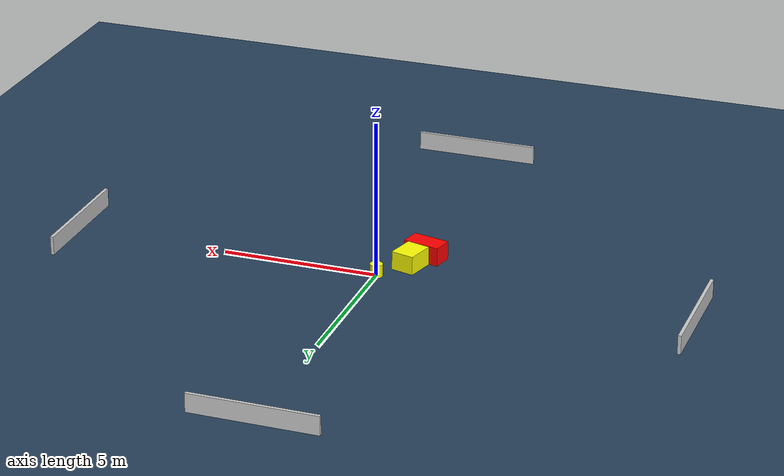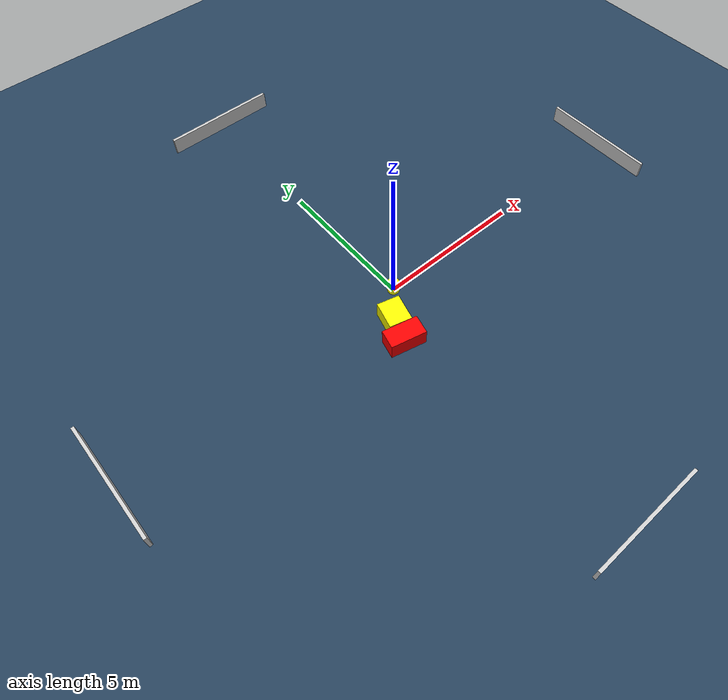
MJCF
<?xml version="1.0" ?>
<mujoco model="generated_environment">
  <option timestep="0.01" integrator="RK4" cone="elliptic"/>
  <default>
    <geom density="1"/>
  </default>
  <asset>
    <texture builtin="gradient" height="3072" name="skybox" rgb1="0.3 0.5 0.7" rgb2="0 0 0" type="skybox" width="512"/>
    <texture builtin="checker" height="300" name="groundplane" rgb1="0.2 0.3 0.4" rgb2="0.1 0.2 0.3" type="2d" width="300"/>
    <material name="groundplane" reflectance="0.2" texrepeat="5 5" texture="groundplane"/>
  </asset>
  <worldbody>
    <light dir="0 0 -1" directional="true" pos="0 0 1.5"/>
    <geom condim="3" friction="0.5 0.005 0.001" material="groundplane" name="floor" pos="0 0 0" size="0 0 0.05" type="plane"/>
    <body name="walls">
      <geom name="wall_1" condim="4" pos="-10.0 0.0 0.3" rgba="0.800000011920929 0.800000011920929 0.800000011920929 1.0" size="0.05 2.0 0.3" type="box"/>
      <geom name="wall_2" condim="4" pos="10.0 0.0 0.3" rgba="0.800000011920929 0.800000011920929 0.800000011920929 1.0" size="0.05 2.0 0.3" type="box"/>
      <geom name="wall_3" condim="4" pos="0.0 -10.0 0.3" rgba="0.800000011920929 0.800000011920929 0.800000011920929 1.0" size="2.0 0.05 0.3" type="box"/>
      <geom name="wall_4" condim="4" pos="0.0 10.0 0.3" rgba="0.800000011920929 0.800000011920929 0.800000011920929 1.0" size="2.0 0.05 0.3" type="box"/>
    </body>
    <body name="robot">
      <joint name="joint_x" type="slide" pos="0 0 0" axis="1 0 0"/>
      <joint name="joint_y" type="slide" pos="0 0 0" axis="0 1 0"/>
      <geom name="robot" type="cylinder" pos="0.0 0.0 0.2" size="0.2 0.2 0.0" mass="5.0" friction="1.0 0.005 0.0001" condim="4" rgba="1.0 1.0 0.0 1.0"/>
    </body>
    <body name="obstacle_1_movable">
      <geom name="obstacle_1_movable" condim="4" pos="-0.7763622387451506 -0.9384466114187566 0.3" euler="0 0 345.3526484554169" friction="0.0 0.005 0.001" rgba="1.0 1.0 0.0 1.0" size="0.37601505029696214 0.459224063290573 0.3" type="box" mass="0.1"/>
      <joint type="free"/>
    </body>
    <body name="obstacle_2_static">
      <geom name="obstacle_2_static" condim="4" pos="-1.0338697268482042 -1.6925551167967048 0.3" euler="0 0 166.89599595579614" friction="0.0 0.005 0.001" rgba="1.0 0.0 0.0 1.0" size="0.59585724868847 0.31878575759863814 0.3" type="box"/>
    </body>
  </worldbody>
  <actuator>
    <motor name="actuator_x" joint="joint_x" gear="1" ctrlrange="-1 1"/>
    <motor name="actuator_y" joint="joint_y" gear="1" ctrlrange="-1 1"/>
  </actuator>
</mujoco>
